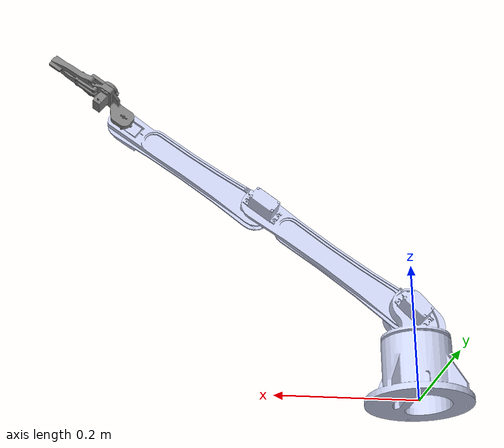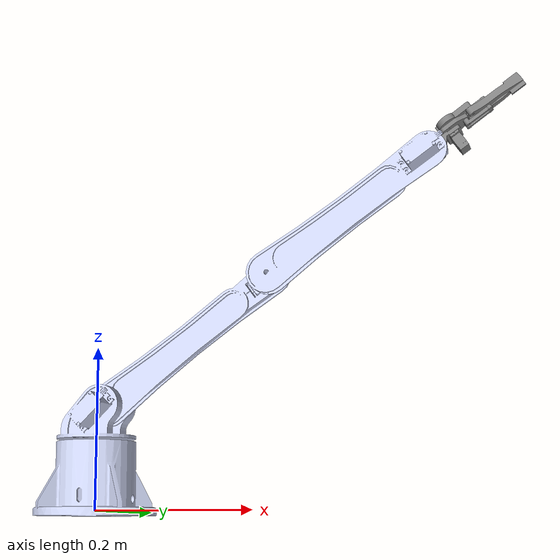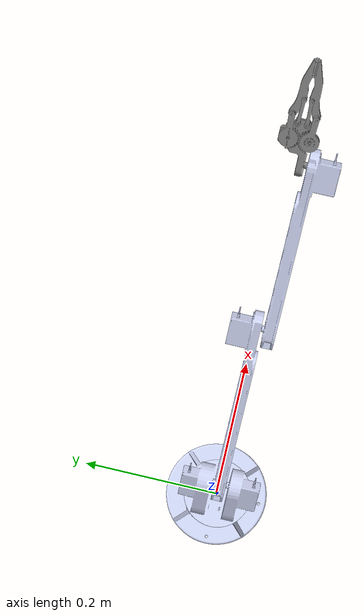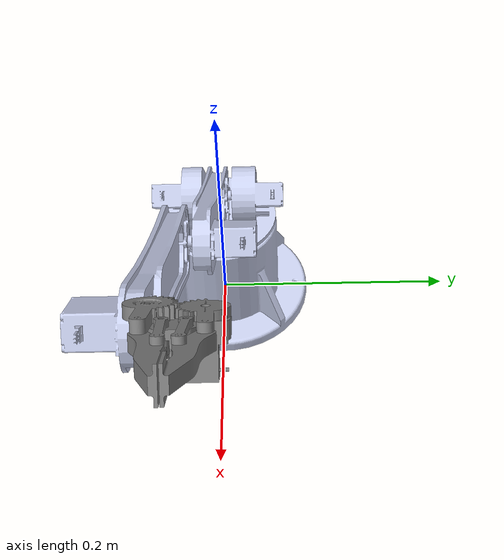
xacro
<?xml version="1.0" encoding="utf-8"?>
<robot name="robot_arm">

<!-- virtual Link -->
  <link name="world"/>

<!-- base Link -->
  <link name="base_link">

    <inertial>
      <origin xyz="0.0028627 0.021679 5.8942E-05" rpy="0.0 0.0 0.0" />
      <mass value="0.29209" />
      <inertia
        ixx="0.00055872"
        ixy="7.7114E-06"
        ixz="-3.5697E-07"
        iyy="0.00076551"
        iyz="-3.9547E-08"
        izz="0.00060302" />
    </inertial>

    <visual>
      <origin xyz="0.0 0.0 0.0" rpy="0.0 0.0 0.0" />
      <geometry>
        <mesh filename="package://robot_arm_description/meshes/base_link.STL" />
      </geometry>
      <material
        name="">
        <color rgba="0.79216 0.81961 0.93333 1" />
      </material>
    </visual>

    <collision>
      <origin xyz="0.0 0.0 0.0" rpy="0.0 0.0 0.0" />
      <geometry>
        <mesh filename="package://robot_arm_description/meshes/base_link.STL" />
      </geometry>
    </collision>
  </link>

<joint name="virtual_joint" type="fixed">
    <parent link="world"/>
    <child link="base_link"/>
    <origin rpy="0.0 0.0 0.0" xyz="0.0 0.0 0.0"/>
  </joint>

<!-- link_1 -->

  <link name="link_1">
    <inertial>
      <origin xyz="0.0040451 -0.0264 -2.0386E-06" rpy="0.0 0.0 0.0" />
      <mass value="0.16513" />
      <inertia
        ixx="0.00018647"
        ixy="1.6592E-05"
        ixz="-6.998E-08"
        iyy="0.00019165"
        iyz="3.0971E-07"
        izz="0.00010349" />
    </inertial>

    <visual>
      <origin xyz="0.0 0.0 0.0" rpy="0.0 0.0 0.0" />
      <geometry>
        <mesh filename="package://robot_arm_description/meshes/link_1.STL" />
      </geometry>
      <material
        name="">
        <color rgba="0.79216 0.81961 0.93333 1" />
      </material>
    </visual>

    <collision>
      <origin xyz="0.0 0.0 0.0" rpy="0.0 0.0 0.0" />
      <geometry>
        <mesh filename="package://robot_arm_description/meshes/link_1.STL" />
      </geometry>
    </collision>
  </link>

  <joint name="base_link_link_1" type="revolute">
    <origin xyz="0.0 0.0 0.087" rpy="-1.5708 0.0 0.0" />
    <parent link="base_link" />
    <child link="link_1" />
    <axis xyz="0 1 0" />
    <limit lower="-2.96705973" upper="2.96705973" effort="1.96" velocity="1" />
  </joint>

<!-- link_2 -->
  <link
    name="link_2">
    <inertial>
      <origin xyz="0.0045838 -0.15184 -0.00020014" rpy="0.0 0.0 0.0" />
      <mass value="0.13115" />
      <inertia
        ixx="0.0011735"
        ixy="5.9035E-05"
        ixz="-1.0026E-07"
        iyy="2.8563E-05"
        iyz="-7.1321E-07"
        izz="0.0011706" />
    </inertial>

    <visual>
      <origin xyz="0.0 0.0 0.0" rpy="0.0 0.0 0.0" />
      <geometry>
        <mesh filename="package://robot_arm_description/meshes/link_2.STL" />
      </geometry>
      <material
        name="">
        <color rgba="0.79216 0.81961 0.93333 1" />
      </material>
    </visual>

    <collision>
      <origin xyz="0.0 0.0 0.0" rpy="0.0 0.0 0.0" />
      <geometry>
        <mesh filename="package://robot_arm_description/meshes/link_2.STL" />
      </geometry>
    </collision>
  </link>

  <joint name="link_1_link_2" type="revolute">
    <origin xyz="0.013919 -0.040276 0" rpy="2.9617 -1.5708 -2.0263" />
    <parent link="link_1" />
    <child link="link_2" />
    <axis xyz="1 0 0" />
    <limit lower="-2.53072742" upper="0.78539816" effort="6.8" velocity="0.7" />
  </joint>

<!-- link_3 -->

  <link name="link_3">
    <inertial>
      <origin xyz="0.021545 -0.14093 -0.0002312" rpy="0.0 0.0 0.0" />
      <mass value="0.12437" />
      <inertia
        ixx="0.00097121"
        ixy="5.513E-05"
        ixz="-1.1546E-07"
        iyy="2.7592E-05"
        iyz="-6.7159E-07"
        izz="0.00096906" />
    </inertial>

    <visual>
      <origin xyz="0.0 0.0 0.0" rpy="0.0 0.0 0.0" />
      <geometry>
        <mesh filename="package://robot_arm_description/meshes/link_3.STL" />
      </geometry>
      <material
        name="">
        <color rgba="0.79216 0.81961 0.93333 1" />
      </material>
    </visual>

    <collision>
      <origin xyz="0.0 0.0 0.0" rpy="0.0 0.0 0.0" />
      <geometry>
        <mesh filename="package://robot_arm_description/meshes/link_3.STL" />
      </geometry>
    </collision>
  </link>

  <joint name="link_2_link_3" type="revolute">
    <origin xyz="0.0 -0.2595 0.0" rpy="3.1121 0.0 -3.1416" />
    <parent link="link_2" />
    <child link="link_3" />
    <axis xyz="1 0 0" />
    <limit lower="-2.18166157" upper="2.18166157" effort="3.43" velocity="0.7" />
  </joint>

<!-- link_4 -->
  <link name="link_4">
    <inertial>
      <origin xyz="0.00910 -0.02791 0.00282" rpy="0.0 0.0 0.0" />
      <mass value="0.17998" />
      <inertia
        ixx="7.49808e-05"
        iyy="3.44045e-05"
        izz="8.18039e-05"
        ixy="1.73088e-05"
        iyz="5.52089e-06"
        ixz="1.75514e-06" />
    </inertial>

    <visual>
      <origin xyz="0.0 0.0 0.0" rpy="0.0 0.0 0.0" />
      <geometry>
        <mesh filename="package://robot_arm_description/meshes/gripper_base.stl" scale="0.001 0.001 0.001"/>
      </geometry>
      <material name="gripper_grey">
        <color rgba="0.5 0.5 0.5 1.0"/>
    </material>
    </visual>

    <collision>
      <origin xyz="0.0 0.0 0.0" rpy="0.0 0.0 0.0" />
      <geometry>
        <mesh filename="package://robot_arm_description/meshes/gripper_base.stl" scale="0.001 0.001 0.001"/>
      </geometry>
    </collision>
  </link>

  <joint name="link_3_link_4" type="revolute">
    <origin xyz="0.003 -0.2395 0.0" rpy="3.1416 0.0 3.1416" />
    <parent link="link_3" />
    <child link="link_4" />
    <axis xyz="1 0 0" />
    <limit lower="-1.5708" upper="1.5708" effort="3.43" velocity="0.8" />
  </joint>

<!-- right gripper gear -->

  <link name="right_gear">
    <inertial>
      <origin xyz="0.0 0.0 0.0" rpy="0.0 0.0 0.0" />
      <mass value="0.02669" />
      <inertia
        ixx="4.11504e-06"
        iyy="9.42101e-07"
        izz="4.90837e-06"
        ixy="-2.5641e-07"
        iyz="-4.3203e-08"
        ixz="-4.5365e-09" />
    </inertial>
    <visual name="right_gear_visual">
      <origin xyz="0 0 -0.0031" rpy="3.1415 0 -0.0488" />
      <geometry>
          <mesh filename="package://robot_arm_description/meshes/right_gear.stl" scale="0.001 0.001 0.001" />
      </geometry>
      <material name="gripper_grey">
          <color rgba="0.5 0.5 0.5 1.0"/>
      </material>
    </visual>

    <collision name="right_gear_collision">
      <origin xyz="0 0 -0.0031" rpy="3.1415 0 -0.0488" />
      <geometry>
          <mesh filename="package://robot_arm_description/meshes/right_gear.stl" scale="0.001 0.001 0.001" />
      </geometry>
    </collision>
  </link>

  <joint name="link_4_right_gear_joint" type="revolute">
    <origin xyz="0.02245 -0.03786 0.01464" rpy="3.1416 -0.0 0.0" />
    <parent link="link_4" />
    <child link="right_gear" />
    <axis xyz="0.0 0 1.0" />
    <limit lower="-1.047198" upper="0.0" effort="1000000" velocity="1000000" />
  </joint>

<!-- right gripper link -->
  <link name="right_link">
      <inertial>
        <origin xyz="-0.00048 -0.01557 -0.00837" rpy="0.0 -0.0 0.0" />
        <mass value="0.012" />
        <inertia
          ixx="2.14039e-06"
          iyy="5.04195e-07"
          izz="1.69333e-06"
          ixy="-5.14704e-08"
          iyz="4.12793e-08"
          ixz="1.29725e-09" />
      </inertial>

    <visual>
      <origin xyz="-0.0 -0.0 -0.00870" rpy="0.0 -0.0 -0.03141" />

        <geometry>
            <mesh filename="package://robot_arm_description/meshes/links.stl" scale="0.001 0.001 0.001" />
        </geometry>
        <material name="gripper_grey">
            <color rgba="0.5 0.5 0.5 1.0"/>
        </material>
    </visual>
    <collision name="links_collision">
        <origin xyz="0 0 -0.00870" rpy="0 0 -0.03141" />
        <geometry>
            <mesh filename="package://robot_arm_description/meshes/links.stl" scale="0.001 0.001 0.001" />
        </geometry>
    </collision>
  </link>

  <joint name="link_4_right_link_joint" type="revolute">
    <origin xyz="0.01445 -0.05785 0.01814" rpy="0.0 -0.0 0.0" />
    <parent link="link_4" />
    <child link="right_link" />
    <axis xyz="0.0 0.0 1.0" />
    <limit lower="0.0" upper="1.047198" effort="1000000" velocity="1000000" />
    <mimic joint="link_4_right_gear_joint" multiplier="-1.0" offset="0"/>
  </joint>

<!-- right gripper finger -->

  <link name="right_gripper_fingure">
    <inertial>
      <origin xyz="-0.00720 0.03233 0.0046" rpy="0.0 -0.0 0.0" />
      <mass value="0.05108" />
      <inertia
        ixx="2.26097e-05"
        iyy="1.47238e-06"
        izz="2.32385e-05"
        ixy="3.44328e-06"
        iyz="2.17397e-20"
        ixz="-2.2926e-20" />
    </inertial>
    <visual >
      <origin xyz="0 0 0.00465" rpy="3.1415 0 0.39793" />
      <geometry>
          <mesh filename="package://robot_arm_description/meshes/gripper-fingures.stl" scale="0.001 0.001 0.001" />
      </geometry>
      <material name="gripper_grey">
        <color rgba="0.5 0.5 0.5 1.0"/>
    </material>
    </visual>
    <collision>
      <origin xyz="0 0 0.00465" rpy="3.1415 0 0.39793" />
      <geometry>
          <mesh filename="package://robot_arm_description/meshes/gripper-fingures.stl" scale="0.001 0.001 0.001" />
      </geometry>
    </collision>
  </link>

  <joint name="right_gear_right_finger_joint" type="revolute">
      <origin xyz="0.001502 0.03071329 0" rpy="0 0 0" />
      <parent link="right_gear" />
      <child link="right_gripper_fingure" />
      <axis xyz="0 0 1" />
      <limit lower="0.0" upper="1.047198" effort="1000000" velocity="1000000" />
      <mimic joint="link_4_right_gear_joint" multiplier="-1.0" offset="0"/>
  </joint>

<!-- left gripper gear -->

  <link name="left_gear">
    <inertial>
      <origin xyz="0.0002 -0.0066 -0.0032" rpy="0.0 -0.0 0.0" />
      <mass value="0.0354" />
      <inertia
        ixx="5.63962e-06"
        iyy="1.3675e-06"
        izz="6.6549e-06"
        ixy="-3.594e-07"
        iyz="-7.981e-08"
        ixz="-7.838e-09" />
    </inertial>

    <visual>
      <origin xyz="0 0 -0.0026" rpy="0 0 -0.0488" />
      <geometry>
          <mesh filename="package://robot_arm_description/meshes/left_gear.stl" scale="0.001 0.001 0.001" />
      </geometry>
      <material name="gripper_grey">
        <color rgba="0.5 0.5 0.5 1.0"/>
    </material>
  </visual>

    <collision>
      <origin xyz="0 0 -0.0026" rpy="0 0 -0.0488" />
      <geometry>
          <mesh filename="package://robot_arm_description/meshes/left_gear.stl" scale="0.001 0.001 0.001" />
      </geometry>
    </collision>

  </link>

  <joint name="link_4_left_gear_joint" type="revolute">
    <origin xyz="-0.005 -0.03786 0.02114" rpy="0 0 0" />
    <parent link="link_4" />
    <child link="left_gear" />
    <axis xyz="0.0 0 1.0" />
    <limit lower="-1.047198" upper="0.0" effort="1000000" velocity="1000000" />
    <mimic joint="link_4_right_gear_joint" multiplier="1.0" offset="0"/>
  </joint>

<!-- left gripper link -->

  <link name="left_link">
    <inertial>
      <origin xyz="0.000489 -0.015572 -0.008374" rpy="0.0 -0.0 0.0" />
      <mass value="0.0121088" />
      <inertia
        ixx="2.14039e-06"
        iyy="5.04195e-07"
        izz="1.69333e-06"
        ixy="5.14704e-08"
        iyz="4.12793e-08"
        ixz="-1.2972e-09" />
    </inertial>

    <visual>
      <origin xyz="0.0 0.0 -0.0087" rpy="0.0 0.0 0.031416" />
      <geometry>
          <mesh filename="package://robot_arm_description/meshes/links.stl" scale="0.001 0.001 0.001" />
      </geometry>
      <material name="gripper_grey">
        <color rgba="0.5 0.5 0.5 1.0"/>
      </material>
    </visual>
    <material name="gripper_grey">
        <color rgba="0.5 0.5 0.5 1.0"/>
    </material>
    <collision>
      <origin xyz="0.0 0.0 -0.0087" rpy="0.0 0.0 0.031416" />
      <geometry>
          <mesh filename="package://robot_arm_description/meshes/links.stl" scale="0.001 0.001 0.001" />
      </geometry>
    </collision>
  </link>

  <joint name="link_4_left_link_joint" type="revolute">
    <origin xyz="0.003 -0.057859 0.01814" rpy="0.0 -0.0 0.0" />
    <parent link="link_4" />
    <child link="left_link" />
    <axis xyz="0.0 0.0 1.0" />
    <limit lower="-1.047198" upper="0.0" effort="1000000" velocity="1000000" />
    <mimic joint="link_4_right_gear_joint" multiplier="1.0" offset="0"/>
  </joint>

<!-- left gripper finger -->

  <link name="left_gripper_fingure">
    <inertial>
      <origin xyz="0.00720 -0.03233 -0.00460" rpy="0.0 -0.0 0.0" />
      <mass value="0.05108" />
      <inertia
        ixx="2.26097e-05"
        iyy="1.47238e-06"
        izz="2.32385e-05"
        ixy="3.44328e-06"
        iyz="-7.1140e-20"
        ixz="-1.0220e-20" />
    </inertial>

    <visual name="gripper-fingures_visual">
      <origin xyz="0.0 0.0 -0.004600" rpy="3.141591 0.0 -2.74365" />
      <geometry>
          <mesh filename="package://robot_arm_description/meshes/gripper-fingures.stl" scale="0.001 0.001 0.001" />
      </geometry>
      <material name="gripper_grey">
        <color rgba="0.5 0.5 0.5 1.0"/>
    </material>
    </visual>

    <collision name="gripper-fingures_collision">
      <origin xyz="0.0 0.0 -0.004600" rpy="3.141591 0.0 -2.74365" />
      <geometry>
          <mesh filename="package://robot_arm_description/meshes/gripper-fingures.stl" scale="0.001 0.001 0.001" />
      </geometry>
    </collision>
  </link>

  <joint name="left_gear_left_finger_joint" type="revolute">
    <origin xyz="-0.001502 -0.030713 -0.006599" rpy="0.0 0.0 0.0" />
    <parent link="left_gear" />
    <child link="left_gripper_fingure" />
    <axis xyz="0.0 3.3152343414076736e-16 1.0" />
    <limit lower="0.0" upper="1.047198" effort="1000000" velocity="1000000" />
    <mimic joint="link_4_right_gear_joint" multiplier="-1.0" offset="0"/>
  </joint>

  <!-- ROS 2 CONTROL -->

  <ros2_control name="RobotSystem" type="system">

    <hardware>
      <plugin>gz_ros2_control/GazeboSimSystem</plugin>
    </hardware>

    <!-- ARM JOINTS -->

    <joint name="base_link_link_1">
      <command_interface name="position">
        <param name="min">-2.96705973</param>
        <param name="max">2.96705973</param>
      </command_interface>
      <state_interface name="position"/>
      <state_interface name="velocity"/>
    </joint>

    <joint name="link_1_link_2">
      <command_interface name="position">
        <param name="min">-2.53072742</param>
        <param name="max">0.78539816</param>
      </command_interface>
      <state_interface name="position"/>
      <state_interface name="velocity"/>
    </joint>

    <joint name="link_2_link_3">
      <command_interface name="position">
        <param name="min">-2.18166157</param>
        <param name="max">2.18166157</param>
      </command_interface>
      <state_interface name="position"/>
      <state_interface name="velocity"/>
    </joint>

    <joint name="link_3_link_4">
      <command_interface name="position">
        <param name="min">-1.5708</param>
        <param name="max">1.5708</param>
      </command_interface>
      <state_interface name="position"/>
      <state_interface name="velocity"/>
    </joint>

    <!-- GRIPPER MASTER JOINT -->

    <joint name="link_4_right_gear_joint">
      <command_interface name="position">
        <param name="min">-1.047198</param>
        <param name="max">0.0</param>
      </command_interface>
      <state_interface name="position"/>
      <state_interface name="velocity"/>
    </joint>

    <!-- GRIPPER MIMIC JOINTS -->

    <!-- Right link -->
    <joint name="link_4_right_link_joint">
      <state_interface name="position"/>
      <state_interface name="velocity"/>
    </joint>

    <!-- Right finger -->
    <joint name="right_gear_right_finger_joint">
      <state_interface name="position"/>
      <state_interface name="velocity"/>
    </joint>

    <!-- Left gear -->
    <joint name="link_4_left_gear_joint">
      <state_interface name="position"/>
      <state_interface name="velocity"/>
    </joint>

    <!-- Left link -->
    <joint name="link_4_left_link_joint">
      <state_interface name="position"/>
      <state_interface name="velocity"/>
    </joint>

    <!-- Left finger -->
    <joint name="left_gear_left_finger_joint">
      <state_interface name="position"/>
      <state_interface name="velocity"/>
    </joint>

  </ros2_control>

  <!-- GAZEBO ROS 2 CONTROL PLUGIN -->

  <gazebo>
    <plugin
      filename="libgz_ros2_control-system.so"
      name="gz_ros2_control::GazeboSimROS2ControlPlugin">

      <parameters>
        $(find robot_arm_description)/config/ros2_controllers.yaml
      </parameters>

    </plugin>
  </gazebo>

</robot>
